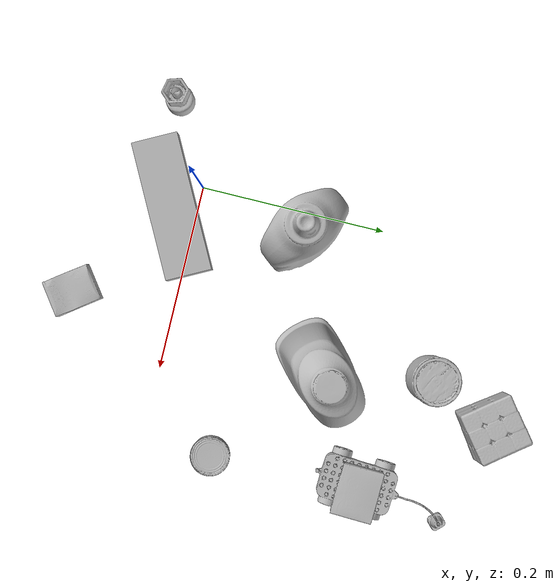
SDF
<sdf version="1.4">
  <world name="default">
    <light name="light1" type="point">
      <pose>0 0 1 0 0 0</pose>
      <diffuse>3 3 3 1</diffuse>
      <specular>3 3 3 1</specular>
    </light>
    <light name="light2" type="point">
      <pose>0 0.5 2 0 0 0</pose>
      <diffuse>1 1 1 1</diffuse>
      <specular>1 1 1 1</specular>
    </light>
    <light name="light3" type="point">
      <pose>0 0.5 2 0 0 0</pose>
      <diffuse>3 3 3 1</diffuse>
      <specular>3 3 3 1</specular>
    </light>
    <scene>
      <ambient>0.7 0.7 0.7</ambient>
    </scene>
    <model name="bottle1">
      <link name="link_bottle1">
        <collision name="default">
          <geometry>
            <mesh>
              <uri>model://mustard_bottle/collision_meshes/collision.obj</uri>
              <scale>1.0 1.0 1.0</scale>
            </mesh>
          </geometry>
          <surface>
            <friction>
              <ode>
                <mu>0.5</mu>
                <mu2>0.5</mu2>
              </ode>
            </friction>
          <contact>
        <ode>
            <max_vel>0</max_vel>
            <min_depth>0.0001</min_depth>
            <kp>1e8</kp>
        </ode>
    </contact></surface>
        </collision>
        <visual name="default">
          <geometry>
            <mesh>
              <uri>model://mustard_bottle/visual_meshes/visual.dae</uri>
              <scale>1.0 1.0 1.0</scale>
            </mesh>
          </geometry>
        </visual>
        <inertial>
          <mass>0.7866348028182983</mass>
          <pose>0.0005032454500906169 -0.00015647400869056582 -0.0174757931381464 0.00041823249995057767 0.0009465787698991903 0.02485370186883952</pose>
          <inertia>
            <ixx>0.0021843775</ixx>
            <iyy>0.0019166061</iyy>
            <izz>0.0005756938</izz>
            <ixy>0</ixy>
            <ixz>0</ixz>
            <iyz>0</iyz>
          </inertia>
        </inertial>
      </link>
      <pose>0.02347402274608612 0.1163119301199913 0.09615197777748108 1.49438015449375e-05 1.6893623931214764e-05 0.8894584953543876</pose>
    </model>
    <model name="bottle2">
      <link name="link_bottle2">
        <collision name="default">
          <geometry>
            <mesh>
              <uri>model://bleach_cleanser/collision_meshes/collision.obj</uri>
              <scale>1.0 1.0 1.0</scale>
            </mesh>
          </geometry>
          <surface>
            <friction>
              <ode>
                <mu>0.5</mu>
                <mu2>0.5</mu2>
              </ode>
            </friction>
          <contact>
        <ode>
            <max_vel>0</max_vel>
            <min_depth>0.0001</min_depth>
            <kp>1e8</kp>
        </ode>
    </contact></surface>
        </collision>
        <visual name="default">
          <geometry>
            <mesh>
              <uri>model://bleach_cleanser/visual_meshes/visual.dae</uri>
              <scale>1.0 1.0 1.0</scale>
            </mesh>
          </geometry>
        </visual>
        <inertial>
          <mass>1.5776710510253906</mass>
          <pose>0.00012193183647468686 0.003783883061259985 -0.02442161552608013 -0.07381671362264838 0.0004201168949340897 -0.006875045535038288</pose>
          <inertia>
            <ixx>0.007678755</ixx>
            <iyy>0.0071554743</iyy>
            <izz>0.0013128674</izz>
            <ixy>0</ixy>
            <ixz>0</ixz>
            <iyz>0</iyz>
          </inertia>
        </inertial>
      </link>
      <pose>0.15768973529338837 0.16603223979473114 0.12578420341014862 -0.0002045915112841467 1.1103514647430138e-05 -0.8181080256091616</pose>
    </model>
    <model name="toy1">
      <link name="link_toy1">
        <collision name="default">
          <geometry>
            <mesh>
              <uri>model://g_lego_duplo/collision_meshes/collision.obj</uri>
              <scale>0.5 0.5 0.5</scale>
            </mesh>
          </geometry>
          <surface>
            <friction>
              <ode>
                <mu>0.5</mu>
                <mu2>0.5</mu2>
              </ode>
            </friction>
          <contact>
        <ode>
            <max_vel>0</max_vel>
            <min_depth>0.0001</min_depth>
            <kp>1e8</kp>
        </ode>
    </contact></surface>
        </collision>
        <visual name="default">
          <geometry>
            <mesh>
              <uri>model://g_lego_duplo/visual_meshes/visual.dae</uri>
              <scale>0.5 0.5 0.5</scale>
            </mesh>
          </geometry>
        </visual>
        <inertial>
          <mass>0.06580430269241333</mass>
          <pose>-0.025023844093084335 0.0008777321199886501 0.0019403373589739203 0.010962977320182745 0.038108249742412996 -0.09653031078073558</pose>
          <inertia>
            <ixx>2.3837789e-05</ixx>
            <iyy>7.206929e-05</iyy>
            <izz>9.016138e-05</izz>
            <ixy>0</ixy>
            <ixz>0</ixz>
            <iyz>0</iyz>
          </inertia>
        </inertial>
      </link>
      <pose>0.27320632338523865 0.2651726007461548 0.01488273311406374 0.0006106779380706163 -0.0019029493693583956 1.5062154926910325</pose>
    </model>
    <model name="toy2">
      <link name="link_toy2">
        <collision name="default">
          <geometry>
            <mesh>
              <uri>model://c_toy_airplane/collision_meshes/collision.obj</uri>
              <scale>1.0 1.0 1.0</scale>
            </mesh>
          </geometry>
          <surface>
            <friction>
              <ode>
                <mu>0.5</mu>
                <mu2>0.5</mu2>
              </ode>
            </friction>
          <contact>
        <ode>
            <max_vel>0</max_vel>
            <min_depth>0.0001</min_depth>
            <kp>1e8</kp>
        </ode>
    </contact></surface>
        </collision>
        <visual name="default">
          <geometry>
            <mesh>
              <uri>model://c_toy_airplane/visual_meshes/visual.dae</uri>
              <scale>1.0 1.0 1.0</scale>
            </mesh>
          </geometry>
        </visual>
        <inertial>
          <mass>0.012545601464807987</mass>
          <pose>-0.00023024262918625027 -4.4310368707556336e-07 -0.0060805282555520535 -0.006192226732466636 -0.01679790977646328 0.7654621556572541</pose>
          <inertia>
            <ixx>5.760684e-06</ixx>
            <iyy>5.744425e-06</iyy>
            <izz>1.3524945e-06</izz>
            <ixy>0</ixy>
            <ixz>0</ixz>
            <iyz>0</iyz>
          </inertia>
        </inertial>
      </link>
      <pose>-0.08454678952693939 -0.04544923081994057 0.03351198509335518 -9.605930347929556e-05 1.786493330236866e-05 1.1201944279328602</pose>
    </model>
    <model name="can1">
      <link name="link_can1">
        <collision name="default">
          <geometry>
            <mesh>
              <uri>model://tuna_fish_can/collision_meshes/collision.obj</uri>
              <scale>0.5 0.5 0.5</scale>
            </mesh>
          </geometry>
          <surface>
            <friction>
              <ode>
                <mu>0.5</mu>
                <mu2>0.5</mu2>
              </ode>
            </friction>
          <contact>
        <ode>
            <max_vel>0</max_vel>
            <min_depth>0.0001</min_depth>
            <kp>1e8</kp>
        </ode>
    </contact></surface>
        </collision>
        <visual name="default">
          <geometry>
            <mesh>
              <uri>model://tuna_fish_can/visual_meshes/visual.dae</uri>
              <scale>0.5 0.5 0.5</scale>
            </mesh>
          </geometry>
        </visual>
        <inertial>
          <mass>0.0216250978410244</mass>
          <pose>-2.036200021393597e-05 -7.256498065544292e-06 -0.0005269024986773729 -0.0017944779234091367 0.00017161663308651613 0.24053681665098822</pose>
          <inertia>
            <ixx>2.923745e-06</ixx>
            <iyy>2.9115588e-06</iyy>
            <izz>5.002946e-06</izz>
            <ixy>0</ixy>
            <ixz>0</ixz>
            <iyz>0</iyz>
          </inertia>
        </inertial>
      </link>
      <pose>0.27842190861701965 0.07594123482704163 0.00851999782025814 8.92824402785226e-09 -3.5663606075609186e-08 1.5607433121904999</pose>
    </model>
    <model name="can2">
      <link name="link_can2">
        <collision name="default">
          <geometry>
            <mesh>
              <uri>model://master_chef_can/collision_meshes/collision.obj</uri>
              <scale>0.5 0.5 0.5</scale>
            </mesh>
          </geometry>
          <surface>
            <friction>
              <ode>
                <mu>0.5</mu>
                <mu2>0.5</mu2>
              </ode>
            </friction>
          <contact>
        <ode>
            <max_vel>0</max_vel>
            <min_depth>0.0001</min_depth>
            <kp>1e8</kp>
        </ode>
    </contact></surface>
        </collision>
        <visual name="default">
          <geometry>
            <mesh>
              <uri>model://master_chef_can/visual_meshes/visual.dae</uri>
              <scale>0.5 0.5 0.5</scale>
            </mesh>
          </geometry>
        </visual>
        <inertial>
          <mass>0.16779577732086182</mass>
          <pose>-4.661964703700505e-05 1.3926845099376806e-07 -5.080012488178909e-05 -0.001799515621871614 0.0006479176547847844 -0.610266079213139</pose>
          <inertia>
            <ixx>9.848473e-05</ixx>
            <iyy>9.77599e-05</iyy>
            <izz>5.442035e-05</izz>
            <ixy>0</ixy>
            <ixz>0</ixz>
            <iyz>0</iyz>
          </inertia>
        </inertial>
      </link>
      <pose>0.14227637648582458 0.28587937355041504 0.035301998257637024 -7.033691006004377e-07 -6.171192414095261e-07 3.1333273735753715</pose>
    </model>
    <model name="box1">
      <link name="link_box1">
        <collision name="default">
          <geometry>
            <mesh>
              <uri>model://rubiks_cube/collision_meshes/collision.obj</uri>
              <scale>1.0 1.0 1.0</scale>
            </mesh>
          </geometry>
          <surface>
            <friction>
              <ode>
                <mu>0.5</mu>
                <mu2>0.5</mu2>
              </ode>
            </friction>
          <contact>
        <ode>
            <max_vel>0</max_vel>
            <min_depth>0.0001</min_depth>
            <kp>1e8</kp>
        </ode>
    </contact></surface>
        </collision>
        <visual name="default">
          <geometry>
            <mesh>
              <uri>model://rubiks_cube/visual_meshes/visual.dae</uri>
              <scale>1.0 1.0 1.0</scale>
            </mesh>
          </geometry>
        </visual>
        <inertial>
          <mass>0.232398122549057</mass>
          <pose>2.6721041649580002e-05 5.256967051536776e-05 -7.264316082000732e-06 -0.05467303663832053 -0.0981402329670775 -0.034454960240128486</pose>
          <inertia>
            <ixx>0.00012841556</ixx>
            <iyy>0.00012781669</iyy>
            <izz>0.00012947968</izz>
            <ixy>0</ixy>
            <ixz>0</ixz>
            <iyz>0</iyz>
          </inertia>
        </inertial>
      </link>
      <pose>0.17687207460403442 0.36011621356010437 0.028679003939032555 1.8176794268354535e-08 1.8824629644283507e-08 0.6532565477978515</pose>
    </model>
    <model name="box2">
      <link name="link_box2">
        <collision name="default">
          <geometry>
            <mesh>
              <uri>model://jenga/collision_meshes/collision.obj</uri>
              <scale>1.0 1.0 1.0</scale>
            </mesh>
          </geometry>
          <surface>
            <friction>
              <ode>
                <mu>0.5</mu>
                <mu2>0.5</mu2>
              </ode>
            </friction>
          <contact>
        <ode>
            <max_vel>0</max_vel>
            <min_depth>0.0001</min_depth>
            <kp>1e8</kp>
        </ode>
    </contact></surface>
        </collision>
        <visual name="default">
          <geometry>
            <mesh>
              <uri>model://jenga/visual_meshes/visual.dae</uri>
              <scale>1.0 1.0 1.0</scale>
            </mesh>
          </geometry>
        </visual>
        <inertial>
          <mass>0.2088489830493927</mass>
          <pose>-2.502855807051674e-07 -0.0001025000965455547 -4.092339804628864e-05 0.0 -7.342154049184251e-07 0.0</pose>
          <inertia>
            <ixx>5.7793575e-05</ixx>
            <iyy>0.00039160773</iyy>
            <izz>0.00041807455</izz>
            <ixy>0</ixy>
            <ixz>0</ixz>
            <iyz>0</iyz>
          </inertia>
        </inertial>
      </link>
      <pose>0.02913309819996357 -0.026065761223435402 0.015000000596046448 1.670569361371698e-08 -2.6797160890549793e-09 -2.656761718273774</pose>
    </model>
    <model name="box3">
      <link name="link_box3">
        <collision name="default">
          <geometry>
            <mesh>
              <uri>model://cracker_box/collision_meshes/collision.obj</uri>
              <scale>0.25 0.25 0.25</scale>
            </mesh>
          </geometry>
          <surface>
            <friction>
              <ode>
                <mu>0.5</mu>
                <mu2>0.5</mu2>
              </ode>
            </friction>
          <contact>
        <ode>
            <max_vel>0</max_vel>
            <min_depth>0.0001</min_depth>
            <kp>1e8</kp>
        </ode>
    </contact></surface>
        </collision>
        <visual name="default">
          <geometry>
            <mesh>
              <uri>model://cracker_box/visual_meshes/visual.dae</uri>
              <scale>0.25 0.25 0.25</scale>
            </mesh>
          </geometry>
        </visual>
        <inertial>
          <mass>0.039105094969272614</mass>
          <pose>0.00023660340229980648 6.358561222441494e-05 -0.00042573834070935845 -0.0003162078884583708 -0.011106488668689832 0.0025467950032832675</pose>
          <inertia>
            <ixx>6.216619e-06</ixx>
            <iyy>1.0264859e-05</iyy>
            <izz>1.4648894e-05</izz>
            <ixy>0</ixy>
            <ixz>0</ixz>
            <iyz>0</iyz>
          </inertia>
        </inertial>
      </link>
      <pose>0.14111460745334625 -0.10988549888134003 0.009096028283238411 -0.014050539098452485 -0.005016635627163416 2.1992450316310483</pose>
    </model>
    <model name="box4">
      <link name="link_box4">
        <collision name="default">
          <geometry>
            <mesh>
              <uri>model://pudding_box/collision_meshes/collision.obj</uri>
              <scale>0.5 0.5 0.5</scale>
            </mesh>
          </geometry>
          <surface>
            <friction>
              <ode>
                <mu>0.5</mu>
                <mu2>0.5</mu2>
              </ode>
            </friction>
          <contact>
        <ode>
            <max_vel>0</max_vel>
            <min_depth>0.0001</min_depth>
            <kp>1e8</kp>
        </ode>
    </contact></surface>
        </collision>
        <visual name="default">
          <geometry>
            <mesh>
              <uri>model://pudding_box/visual_meshes/visual.dae</uri>
              <scale>0.5 0.5 0.5</scale>
            </mesh>
          </geometry>
        </visual>
        <inertial>
          <mass>0.03813362866640091</mass>
          <pose>0.00024474109522998333 0.00040339428232982755 -0.0002594413817860186 0.005213101815861678 -0.006603796390356506 0.020079825165494957</pose>
          <inertia>
            <ixx>1.0777026e-05</ixx>
            <iyy>7.25086e-06</iyy>
            <izz>1.5915095e-05</izz>
            <ixy>0</ixy>
            <ixz>0</ixz>
            <iyz>0</iyz>
          </inertia>
        </inertial>
      </link>
      <pose>0.2764297127723694 0.23601852357387543 0.03647405654191971 0.021874001575681694 -0.011406950030179792 1.5351634107817935</pose>
    </model>
  <physics type="ode">
      <max_contacts>50</max_contacts>
      <ode>
        <solver>
          <type>quick</type>
          <iters>75</iters>
        </solver>
        <constraints>
          <contact_max_correcting_vel>0</contact_max_correcting_vel>
          <contact_surface_layer>0</contact_surface_layer>
        </constraints>
      </ode>
    </physics></world>
</sdf>
